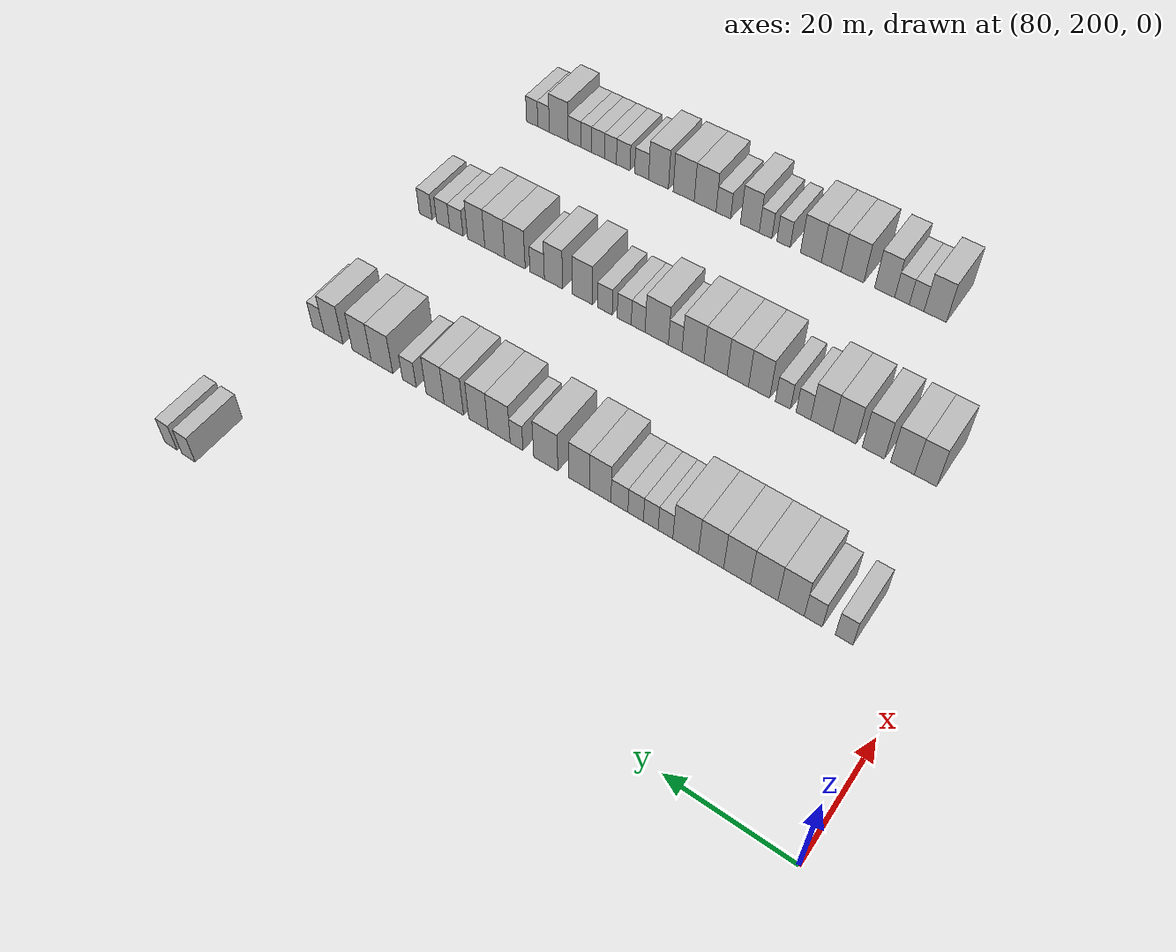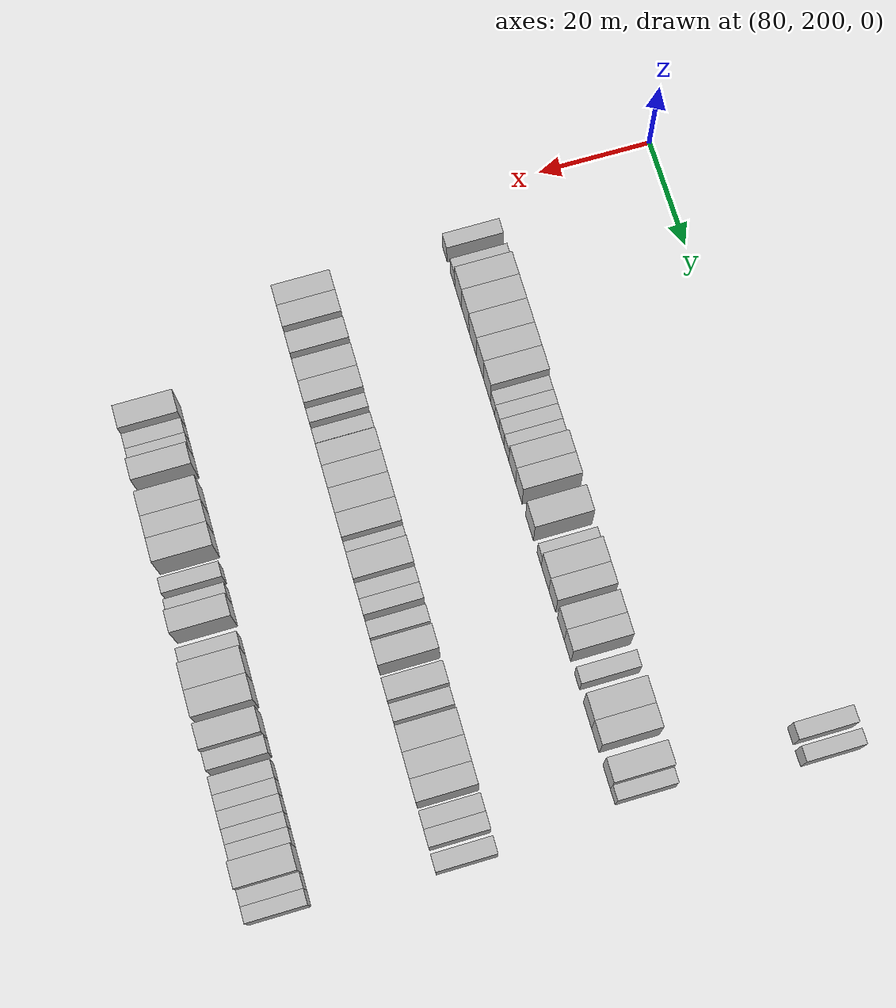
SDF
<sdf version="1.6">
 <world name="default">
  <model name="building_632">
   <static>1</static>
   <pose>85.0000 304.8907 0 0.000000 0.000000 0.000000</pose>
   <link name="link">
    <pose>0 0 3.00 0 0 0</pose>
    <collision name="collision"><geometry><box><size>10.0000 2.8328 6.0000</size></box></geometry></collision>
    <visual name="visual">
     <cast_shadows>0</cast_shadows>
     <geometry><box><size>10.0000 2.8328 6.0000</size></box></geometry>
     <material>
      <script>
       <uri>model://HANNAS_wall/materials/scripts</uri>
       <uri>model://HANNAS_wall/materials/textures</uri>
       <name>vrc/HANNAS_wall</name>
      </script>
     </material>
    </visual>
   </link>
  </model>
  <model name="building_633">
   <static>1</static>
   <pose>85.0000 308.6140 0 0.000000 0.000000 0.000000</pose>
   <link name="link">
    <pose>0 0 3.00 0 0 0</pose>
    <collision name="collision"><geometry><box><size>10.0000 2.6139 6.0000</size></box></geometry></collision>
    <visual name="visual">
     <cast_shadows>0</cast_shadows>
     <geometry><box><size>10.0000 2.6139 6.0000</size></box></geometry>
     <material>
      <script>
       <uri>model://HANNAS_wall/materials/scripts</uri>
       <uri>model://HANNAS_wall/materials/textures</uri>
       <name>vrc/HANNAS_wall</name>
      </script>
     </material>
    </visual>
   </link>
  </model>
  <model name="building_836">
   <static>1</static>
   <pose>115.0000 210.1553 0 0.000000 0.000000 0.000000</pose>
   <link name="link">
    <pose>0 0 3.00 0 0 0</pose>
    <collision name="collision"><geometry><box><size>10.0000 2.7211 6.0000</size></box></geometry></collision>
    <visual name="visual">
     <cast_shadows>0</cast_shadows>
     <geometry><box><size>10.0000 2.7211 6.0000</size></box></geometry>
     <material>
      <script>
       <uri>model://HANNAS_wall/materials/scripts</uri>
       <uri>model://HANNAS_wall/materials/textures</uri>
       <name>vrc/HANNAS_wall</name>
      </script>
     </material>
    </visual>
   </link>
  </model>
  <model name="building_837">
   <static>1</static>
   <pose>115.0000 214.9352 0 0.000000 0.000000 0.000000</pose>
   <link name="link">
    <pose>0 0 3.00 0 0 0</pose>
    <collision name="collision"><geometry><box><size>10.0000 2.8386 6.0000</size></box></geometry></collision>
    <visual name="visual">
     <cast_shadows>0</cast_shadows>
     <geometry><box><size>10.0000 2.8386 6.0000</size></box></geometry>
     <material>
      <script>
       <uri>model://HANNAS_wall/materials/scripts</uri>
       <uri>model://HANNAS_wall/materials/textures</uri>
       <name>vrc/HANNAS_wall</name>
      </script>
     </material>
    </visual>
   </link>
  </model>
  <model name="building_838">
   <static>1</static>
   <pose>115.0000 218.4453 0 0.000000 0.000000 0.000000</pose>
   <link name="link">
    <pose>0 0 4.50 0 0 0</pose>
    <collision name="collision"><geometry><box><size>10.0000 4.1818 9.0000</size></box></geometry></collision>
    <visual name="visual">
     <cast_shadows>0</cast_shadows>
     <geometry><box><size>10.0000 4.1818 9.0000</size></box></geometry>
     <material>
      <script>
       <uri>model://HANNAS_wall/materials/scripts</uri>
       <uri>model://HANNAS_wall/materials/textures</uri>
       <name>vrc/HANNAS_wall</name>
      </script>
     </material>
    </visual>
   </link>
  </model>
  <model name="building_839">
   <static>1</static>
   <pose>115.0000 222.7494 0 0.000000 0.000000 0.000000</pose>
   <link name="link">
    <pose>0 0 4.50 0 0 0</pose>
    <collision name="collision"><geometry><box><size>10.0000 4.4264 9.0000</size></box></geometry></collision>
    <visual name="visual">
     <cast_shadows>0</cast_shadows>
     <geometry><box><size>10.0000 4.4264 9.0000</size></box></geometry>
     <material>
      <script>
       <uri>model://HANNAS_wall/materials/scripts</uri>
       <uri>model://HANNAS_wall/materials/textures</uri>
       <name>vrc/HANNAS_wall</name>
      </script>
     </material>
    </visual>
   </link>
  </model>
  <model name="building_840">
   <static>1</static>
   <pose>115.0000 227.1633 0 0.000000 0.000000 0.000000</pose>
   <link name="link">
    <pose>0 0 4.50 0 0 0</pose>
    <collision name="collision"><geometry><box><size>10.0000 4.4013 9.0000</size></box></geometry></collision>
    <visual name="visual">
     <cast_shadows>0</cast_shadows>
     <geometry><box><size>10.0000 4.4013 9.0000</size></box></geometry>
     <material>
      <script>
       <uri>model://HANNAS_wall/materials/scripts</uri>
       <uri>model://HANNAS_wall/materials/textures</uri>
       <name>vrc/HANNAS_wall</name>
      </script>
     </material>
    </visual>
   </link>
  </model>
  <model name="building_841">
   <static>1</static>
   <pose>115.0000 231.4648 0 0.000000 0.000000 0.000000</pose>
   <link name="link">
    <pose>0 0 4.50 0 0 0</pose>
    <collision name="collision"><geometry><box><size>10.0000 4.2017 9.0000</size></box></geometry></collision>
    <visual name="visual">
     <cast_shadows>0</cast_shadows>
     <geometry><box><size>10.0000 4.2017 9.0000</size></box></geometry>
     <material>
      <script>
       <uri>model://HANNAS_wall/materials/scripts</uri>
       <uri>model://HANNAS_wall/materials/textures</uri>
       <name>vrc/HANNAS_wall</name>
      </script>
     </material>
    </visual>
   </link>
  </model>
  <model name="building_842">
   <static>1</static>
   <pose>115.0000 235.7319 0 0.000000 0.000000 0.000000</pose>
   <link name="link">
    <pose>0 0 4.50 0 0 0</pose>
    <collision name="collision"><geometry><box><size>10.0000 4.3326 9.0000</size></box></geometry></collision>
    <visual name="visual">
     <cast_shadows>0</cast_shadows>
     <geometry><box><size>10.0000 4.3326 9.0000</size></box></geometry>
     <material>
      <script>
       <uri>model://HANNAS_wall/materials/scripts</uri>
       <uri>model://HANNAS_wall/materials/textures</uri>
       <name>vrc/HANNAS_wall</name>
      </script>
     </material>
    </visual>
   </link>
  </model>
  <model name="building_843">
   <static>1</static>
   <pose>115.0000 239.1589 0 0.000000 0.000000 0.000000</pose>
   <link name="link">
    <pose>0 0 3.00 0 0 0</pose>
    <collision name="collision"><geometry><box><size>10.0000 2.5213 6.0000</size></box></geometry></collision>
    <visual name="visual">
     <cast_shadows>0</cast_shadows>
     <geometry><box><size>10.0000 2.5213 6.0000</size></box></geometry>
     <material>
      <script>
       <uri>model://HANNAS_wall/materials/scripts</uri>
       <uri>model://HANNAS_wall/materials/textures</uri>
       <name>vrc/HANNAS_wall</name>
      </script>
     </material>
    </visual>
   </link>
  </model>
  <model name="building_844">
   <static>1</static>
   <pose>115.0000 241.6951 0 0.000000 0.000000 0.000000</pose>
   <link name="link">
    <pose>0 0 3.00 0 0 0</pose>
    <collision name="collision"><geometry><box><size>10.0000 2.5510 6.0000</size></box></geometry></collision>
    <visual name="visual">
     <cast_shadows>0</cast_shadows>
     <geometry><box><size>10.0000 2.5510 6.0000</size></box></geometry>
     <material>
      <script>
       <uri>model://HANNAS_wall/materials/scripts</uri>
       <uri>model://HANNAS_wall/materials/textures</uri>
       <name>vrc/HANNAS_wall</name>
      </script>
     </material>
    </visual>
   </link>
  </model>
  <model name="building_845">
   <static>1</static>
   <pose>115.0000 244.3239 0 0.000000 0.000000 0.000000</pose>
   <link name="link">
    <pose>0 0 3.00 0 0 0</pose>
    <collision name="collision"><geometry><box><size>10.0000 2.7066 6.0000</size></box></geometry></collision>
    <visual name="visual">
     <cast_shadows>0</cast_shadows>
     <geometry><box><size>10.0000 2.7066 6.0000</size></box></geometry>
     <material>
      <script>
       <uri>model://HANNAS_wall/materials/scripts</uri>
       <uri>model://HANNAS_wall/materials/textures</uri>
       <name>vrc/HANNAS_wall</name>
      </script>
     </material>
    </visual>
   </link>
  </model>
  <model name="building_846">
   <static>1</static>
   <pose>115.0000 247.1698 0 0.000000 0.000000 0.000000</pose>
   <link name="link">
    <pose>0 0 3.00 0 0 0</pose>
    <collision name="collision"><geometry><box><size>10.0000 2.9851 6.0000</size></box></geometry></collision>
    <visual name="visual">
     <cast_shadows>0</cast_shadows>
     <geometry><box><size>10.0000 2.9851 6.0000</size></box></geometry>
     <material>
      <script>
       <uri>model://HANNAS_wall/materials/scripts</uri>
       <uri>model://HANNAS_wall/materials/textures</uri>
       <name>vrc/HANNAS_wall</name>
      </script>
     </material>
    </visual>
   </link>
  </model>
  <model name="building_847">
   <static>1</static>
   <pose>115.0000 250.5902 0 0.000000 0.000000 0.000000</pose>
   <link name="link">
    <pose>0 0 4.50 0 0 0</pose>
    <collision name="collision"><geometry><box><size>10.0000 3.8558 9.0000</size></box></geometry></collision>
    <visual name="visual">
     <cast_shadows>0</cast_shadows>
     <geometry><box><size>10.0000 3.8558 9.0000</size></box></geometry>
     <material>
      <script>
       <uri>model://HANNAS_wall/materials/scripts</uri>
       <uri>model://HANNAS_wall/materials/textures</uri>
       <name>vrc/HANNAS_wall</name>
      </script>
     </material>
    </visual>
   </link>
  </model>
  <model name="building_848">
   <static>1</static>
   <pose>115.0000 254.3820 0 0.000000 0.000000 0.000000</pose>
   <link name="link">
    <pose>0 0 4.50 0 0 0</pose>
    <collision name="collision"><geometry><box><size>10.0000 3.7278 9.0000</size></box></geometry></collision>
    <visual name="visual">
     <cast_shadows>0</cast_shadows>
     <geometry><box><size>10.0000 3.7278 9.0000</size></box></geometry>
     <material>
      <script>
       <uri>model://HANNAS_wall/materials/scripts</uri>
       <uri>model://HANNAS_wall/materials/textures</uri>
       <name>vrc/HANNAS_wall</name>
      </script>
     </material>
    </visual>
   </link>
  </model>
  <model name="building_849">
   <static>1</static>
   <pose>115.0000 260.4885 0 0.000000 0.000000 0.000000</pose>
   <link name="link">
    <pose>0 0 4.50 0 0 0</pose>
    <collision name="collision"><geometry><box><size>10.0000 4.4853 9.0000</size></box></geometry></collision>
    <visual name="visual">
     <cast_shadows>0</cast_shadows>
     <geometry><box><size>10.0000 4.4853 9.0000</size></box></geometry>
     <material>
      <script>
       <uri>model://HANNAS_wall/materials/scripts</uri>
       <uri>model://HANNAS_wall/materials/textures</uri>
       <name>vrc/HANNAS_wall</name>
      </script>
     </material>
    </visual>
   </link>
  </model>
  <model name="building_850">
   <static>1</static>
   <pose>115.0000 265.9435 0 0.000000 0.000000 0.000000</pose>
   <link name="link">
    <pose>0 0 3.00 0 0 0</pose>
    <collision name="collision"><geometry><box><size>10.0000 2.4246 6.0000</size></box></geometry></collision>
    <visual name="visual">
     <cast_shadows>0</cast_shadows>
     <geometry><box><size>10.0000 2.4246 6.0000</size></box></geometry>
     <material>
      <script>
       <uri>model://HANNAS_wall/materials/scripts</uri>
       <uri>model://HANNAS_wall/materials/textures</uri>
       <name>vrc/HANNAS_wall</name>
      </script>
     </material>
    </visual>
   </link>
  </model>
  <model name="building_851">
   <static>1</static>
   <pose>115.0000 269.2819 0 0.000000 0.000000 0.000000</pose>
   <link name="link">
    <pose>0 0 4.50 0 0 0</pose>
    <collision name="collision"><geometry><box><size>10.0000 4.2522 9.0000</size></box></geometry></collision>
    <visual name="visual">
     <cast_shadows>0</cast_shadows>
     <geometry><box><size>10.0000 4.2522 9.0000</size></box></geometry>
     <material>
      <script>
       <uri>model://HANNAS_wall/materials/scripts</uri>
       <uri>model://HANNAS_wall/materials/textures</uri>
       <name>vrc/HANNAS_wall</name>
      </script>
     </material>
    </visual>
   </link>
  </model>
  <model name="building_852">
   <static>1</static>
   <pose>115.0000 273.2764 0 0.000000 0.000000 0.000000</pose>
   <link name="link">
    <pose>0 0 4.50 0 0 0</pose>
    <collision name="collision"><geometry><box><size>10.0000 3.7368 9.0000</size></box></geometry></collision>
    <visual name="visual">
     <cast_shadows>0</cast_shadows>
     <geometry><box><size>10.0000 3.7368 9.0000</size></box></geometry>
     <material>
      <script>
       <uri>model://HANNAS_wall/materials/scripts</uri>
       <uri>model://HANNAS_wall/materials/textures</uri>
       <name>vrc/HANNAS_wall</name>
      </script>
     </material>
    </visual>
   </link>
  </model>
  <model name="building_853">
   <static>1</static>
   <pose>115.0000 278.0566 0 0.000000 0.000000 0.000000</pose>
   <link name="link">
    <pose>0 0 4.50 0 0 0</pose>
    <collision name="collision"><geometry><box><size>10.0000 3.8236 9.0000</size></box></geometry></collision>
    <visual name="visual">
     <cast_shadows>0</cast_shadows>
     <geometry><box><size>10.0000 3.8236 9.0000</size></box></geometry>
     <material>
      <script>
       <uri>model://HANNAS_wall/materials/scripts</uri>
       <uri>model://HANNAS_wall/materials/textures</uri>
       <name>vrc/HANNAS_wall</name>
      </script>
     </material>
    </visual>
   </link>
  </model>
  <model name="building_854">
   <static>1</static>
   <pose>115.0000 281.7792 0 0.000000 0.000000 0.000000</pose>
   <link name="link">
    <pose>0 0 4.50 0 0 0</pose>
    <collision name="collision"><geometry><box><size>10.0000 3.6218 9.0000</size></box></geometry></collision>
    <visual name="visual">
     <cast_shadows>0</cast_shadows>
     <geometry><box><size>10.0000 3.6218 9.0000</size></box></geometry>
     <material>
      <script>
       <uri>model://HANNAS_wall/materials/scripts</uri>
       <uri>model://HANNAS_wall/materials/textures</uri>
       <name>vrc/HANNAS_wall</name>
      </script>
     </material>
    </visual>
   </link>
  </model>
  <model name="building_855">
   <static>1</static>
   <pose>115.0000 286.9807 0 0.000000 0.000000 0.000000</pose>
   <link name="link">
    <pose>0 0 3.00 0 0 0</pose>
    <collision name="collision"><geometry><box><size>10.0000 2.7812 6.0000</size></box></geometry></collision>
    <visual name="visual">
     <cast_shadows>0</cast_shadows>
     <geometry><box><size>10.0000 2.7812 6.0000</size></box></geometry>
     <material>
      <script>
       <uri>model://HANNAS_wall/materials/scripts</uri>
       <uri>model://HANNAS_wall/materials/textures</uri>
       <name>vrc/HANNAS_wall</name>
      </script>
     </material>
    </visual>
   </link>
  </model>
  <model name="building_856">
   <static>1</static>
   <pose>115.0000 292.6043 0 0.000000 0.000000 0.000000</pose>
   <link name="link">
    <pose>0 0 4.50 0 0 0</pose>
    <collision name="collision"><geometry><box><size>10.0000 4.4660 9.0000</size></box></geometry></collision>
    <visual name="visual">
     <cast_shadows>0</cast_shadows>
     <geometry><box><size>10.0000 4.4660 9.0000</size></box></geometry>
     <material>
      <script>
       <uri>model://HANNAS_wall/materials/scripts</uri>
       <uri>model://HANNAS_wall/materials/textures</uri>
       <name>vrc/HANNAS_wall</name>
      </script>
     </material>
    </visual>
   </link>
  </model>
  <model name="building_857">
   <static>1</static>
   <pose>115.0000 296.8249 0 0.000000 0.000000 0.000000</pose>
   <link name="link">
    <pose>0 0 4.50 0 0 0</pose>
    <collision name="collision"><geometry><box><size>10.0000 3.9752 9.0000</size></box></geometry></collision>
    <visual name="visual">
     <cast_shadows>0</cast_shadows>
     <geometry><box><size>10.0000 3.9752 9.0000</size></box></geometry>
     <material>
      <script>
       <uri>model://HANNAS_wall/materials/scripts</uri>
       <uri>model://HANNAS_wall/materials/textures</uri>
       <name>vrc/HANNAS_wall</name>
      </script>
     </material>
    </visual>
   </link>
  </model>
  <model name="building_858">
   <static>1</static>
   <pose>115.0000 302.8212 0 0.000000 0.000000 0.000000</pose>
   <link name="link">
    <pose>0 0 4.50 0 0 0</pose>
    <collision name="collision"><geometry><box><size>10.0000 4.0174 9.0000</size></box></geometry></collision>
    <visual name="visual">
     <cast_shadows>0</cast_shadows>
     <geometry><box><size>10.0000 4.0174 9.0000</size></box></geometry>
     <material>
      <script>
       <uri>model://HANNAS_wall/materials/scripts</uri>
       <uri>model://HANNAS_wall/materials/textures</uri>
       <name>vrc/HANNAS_wall</name>
      </script>
     </material>
    </visual>
   </link>
  </model>
  <model name="building_859">
   <static>1</static>
   <pose>115.0000 306.1054 0 0.000000 0.000000 0.000000</pose>
   <link name="link">
    <pose>0 0 3.00 0 0 0</pose>
    <collision name="collision"><geometry><box><size>10.0000 2.5510 6.0000</size></box></geometry></collision>
    <visual name="visual">
     <cast_shadows>0</cast_shadows>
     <geometry><box><size>10.0000 2.5510 6.0000</size></box></geometry>
     <material>
      <script>
       <uri>model://HANNAS_wall/materials/scripts</uri>
       <uri>model://HANNAS_wall/materials/textures</uri>
       <name>vrc/HANNAS_wall</name>
      </script>
     </material>
    </visual>
   </link>
  </model>
  <model name="building_1061">
   <static>1</static>
   <pose>145.0000 212.7986 0 0.000000 0.000000 0.000000</pose>
   <link name="link">
    <pose>0 0 4.50 0 0 0</pose>
    <collision name="collision"><geometry><box><size>10.0000 3.6614 9.0000</size></box></geometry></collision>
    <visual name="visual">
     <cast_shadows>0</cast_shadows>
     <geometry><box><size>10.0000 3.6614 9.0000</size></box></geometry>
     <material>
      <script>
       <uri>model://HANNAS_wall/materials/scripts</uri>
       <uri>model://HANNAS_wall/materials/textures</uri>
       <name>vrc/HANNAS_wall</name>
      </script>
     </material>
    </visual>
   </link>
  </model>
  <model name="building_1062">
   <static>1</static>
   <pose>145.0000 216.6008 0 0.000000 0.000000 0.000000</pose>
   <link name="link">
    <pose>0 0 4.50 0 0 0</pose>
    <collision name="collision"><geometry><box><size>10.0000 3.9428 9.0000</size></box></geometry></collision>
    <visual name="visual">
     <cast_shadows>0</cast_shadows>
     <geometry><box><size>10.0000 3.9428 9.0000</size></box></geometry>
     <material>
      <script>
       <uri>model://HANNAS_wall/materials/scripts</uri>
       <uri>model://HANNAS_wall/materials/textures</uri>
       <name>vrc/HANNAS_wall</name>
      </script>
     </material>
    </visual>
   </link>
  </model>
  <model name="building_1063">
   <static>1</static>
   <pose>145.0000 221.4599 0 0.000000 0.000000 0.000000</pose>
   <link name="link">
    <pose>0 0 4.50 0 0 0</pose>
    <collision name="collision"><geometry><box><size>10.0000 3.7754 9.0000</size></box></geometry></collision>
    <visual name="visual">
     <cast_shadows>0</cast_shadows>
     <geometry><box><size>10.0000 3.7754 9.0000</size></box></geometry>
     <material>
      <script>
       <uri>model://HANNAS_wall/materials/scripts</uri>
       <uri>model://HANNAS_wall/materials/textures</uri>
       <name>vrc/HANNAS_wall</name>
      </script>
     </material>
    </visual>
   </link>
  </model>
  <model name="building_1064">
   <static>1</static>
   <pose>145.0000 226.3456 0 0.000000 0.000000 0.000000</pose>
   <link name="link">
    <pose>0 0 4.50 0 0 0</pose>
    <collision name="collision"><geometry><box><size>10.0000 3.9961 9.0000</size></box></geometry></collision>
    <visual name="visual">
     <cast_shadows>0</cast_shadows>
     <geometry><box><size>10.0000 3.9961 9.0000</size></box></geometry>
     <material>
      <script>
       <uri>model://HANNAS_wall/materials/scripts</uri>
       <uri>model://HANNAS_wall/materials/textures</uri>
       <name>vrc/HANNAS_wall</name>
      </script>
     </material>
    </visual>
   </link>
  </model>
  <model name="building_1065">
   <static>1</static>
   <pose>145.0000 230.2855 0 0.000000 0.000000 0.000000</pose>
   <link name="link">
    <pose>0 0 4.50 0 0 0</pose>
    <collision name="collision"><geometry><box><size>10.0000 3.8837 9.0000</size></box></geometry></collision>
    <visual name="visual">
     <cast_shadows>0</cast_shadows>
     <geometry><box><size>10.0000 3.8837 9.0000</size></box></geometry>
     <material>
      <script>
       <uri>model://HANNAS_wall/materials/scripts</uri>
       <uri>model://HANNAS_wall/materials/textures</uri>
       <name>vrc/HANNAS_wall</name>
      </script>
     </material>
    </visual>
   </link>
  </model>
  <model name="building_1066">
   <static>1</static>
   <pose>145.0000 233.4988 0 0.000000 0.000000 0.000000</pose>
   <link name="link">
    <pose>0 0 3.00 0 0 0</pose>
    <collision name="collision"><geometry><box><size>10.0000 2.5429 6.0000</size></box></geometry></collision>
    <visual name="visual">
     <cast_shadows>0</cast_shadows>
     <geometry><box><size>10.0000 2.5429 6.0000</size></box></geometry>
     <material>
      <script>
       <uri>model://HANNAS_wall/materials/scripts</uri>
       <uri>model://HANNAS_wall/materials/textures</uri>
       <name>vrc/HANNAS_wall</name>
      </script>
     </material>
    </visual>
   </link>
  </model>
  <model name="building_1067">
   <static>1</static>
   <pose>145.0000 237.1090 0 0.000000 0.000000 0.000000</pose>
   <link name="link">
    <pose>0 0 3.00 0 0 0</pose>
    <collision name="collision"><geometry><box><size>10.0000 2.6773 6.0000</size></box></geometry></collision>
    <visual name="visual">
     <cast_shadows>0</cast_shadows>
     <geometry><box><size>10.0000 2.6773 6.0000</size></box></geometry>
     <material>
      <script>
       <uri>model://HANNAS_wall/materials/scripts</uri>
       <uri>model://HANNAS_wall/materials/textures</uri>
       <name>vrc/HANNAS_wall</name>
      </script>
     </material>
    </visual>
   </link>
  </model>
  <model name="building_1068">
   <static>1</static>
   <pose>145.0000 241.3658 0 0.000000 0.000000 0.000000</pose>
   <link name="link">
    <pose>0 0 4.50 0 0 0</pose>
    <collision name="collision"><geometry><box><size>10.0000 3.8363 9.0000</size></box></geometry></collision>
    <visual name="visual">
     <cast_shadows>0</cast_shadows>
     <geometry><box><size>10.0000 3.8363 9.0000</size></box></geometry>
     <material>
      <script>
       <uri>model://HANNAS_wall/materials/scripts</uri>
       <uri>model://HANNAS_wall/materials/textures</uri>
       <name>vrc/HANNAS_wall</name>
      </script>
     </material>
    </visual>
   </link>
  </model>
  <model name="building_1069">
   <static>1</static>
   <pose>145.0000 245.2381 0 0.000000 0.000000 0.000000</pose>
   <link name="link">
    <pose>0 0 4.50 0 0 0</pose>
    <collision name="collision"><geometry><box><size>10.0000 3.9084 9.0000</size></box></geometry></collision>
    <visual name="visual">
     <cast_shadows>0</cast_shadows>
     <geometry><box><size>10.0000 3.9084 9.0000</size></box></geometry>
     <material>
      <script>
       <uri>model://HANNAS_wall/materials/scripts</uri>
       <uri>model://HANNAS_wall/materials/textures</uri>
       <name>vrc/HANNAS_wall</name>
      </script>
     </material>
    </visual>
   </link>
  </model>
  <model name="building_1070">
   <static>1</static>
   <pose>145.0000 249.3466 0 0.000000 0.000000 0.000000</pose>
   <link name="link">
    <pose>0 0 4.50 0 0 0</pose>
    <collision name="collision"><geometry><box><size>10.0000 4.3087 9.0000</size></box></geometry></collision>
    <visual name="visual">
     <cast_shadows>0</cast_shadows>
     <geometry><box><size>10.0000 4.3087 9.0000</size></box></geometry>
     <material>
      <script>
       <uri>model://HANNAS_wall/materials/scripts</uri>
       <uri>model://HANNAS_wall/materials/textures</uri>
       <name>vrc/HANNAS_wall</name>
      </script>
     </material>
    </visual>
   </link>
  </model>
  <model name="building_1071">
   <static>1</static>
   <pose>145.0000 253.5643 0 0.000000 0.000000 0.000000</pose>
   <link name="link">
    <pose>0 0 4.50 0 0 0</pose>
    <collision name="collision"><geometry><box><size>10.0000 4.1267 9.0000</size></box></geometry></collision>
    <visual name="visual">
     <cast_shadows>0</cast_shadows>
     <geometry><box><size>10.0000 4.1267 9.0000</size></box></geometry>
     <material>
      <script>
       <uri>model://HANNAS_wall/materials/scripts</uri>
       <uri>model://HANNAS_wall/materials/textures</uri>
       <name>vrc/HANNAS_wall</name>
      </script>
     </material>
    </visual>
   </link>
  </model>
  <model name="building_1072">
   <static>1</static>
   <pose>145.0000 256.9150 0 0.000000 0.000000 0.000000</pose>
   <link name="link">
    <pose>0 0 3.00 0 0 0</pose>
    <collision name="collision"><geometry><box><size>10.0000 2.5748 6.0000</size></box></geometry></collision>
    <visual name="visual">
     <cast_shadows>0</cast_shadows>
     <geometry><box><size>10.0000 2.5748 6.0000</size></box></geometry>
     <material>
      <script>
       <uri>model://HANNAS_wall/materials/scripts</uri>
       <uri>model://HANNAS_wall/materials/textures</uri>
       <name>vrc/HANNAS_wall</name>
      </script>
     </material>
    </visual>
   </link>
  </model>
  <model name="building_1073">
   <static>1</static>
   <pose>145.0000 260.4505 0 0.000000 0.000000 0.000000</pose>
   <link name="link">
    <pose>0 0 4.50 0 0 0</pose>
    <collision name="collision"><geometry><box><size>10.0000 4.4962 9.0000</size></box></geometry></collision>
    <visual name="visual">
     <cast_shadows>0</cast_shadows>
     <geometry><box><size>10.0000 4.4962 9.0000</size></box></geometry>
     <material>
      <script>
       <uri>model://HANNAS_wall/materials/scripts</uri>
       <uri>model://HANNAS_wall/materials/textures</uri>
       <name>vrc/HANNAS_wall</name>
      </script>
     </material>
    </visual>
   </link>
  </model>
  <model name="building_1074">
   <static>1</static>
   <pose>145.0000 264.0435 0 0.000000 0.000000 0.000000</pose>
   <link name="link">
    <pose>0 0 3.00 0 0 0</pose>
    <collision name="collision"><geometry><box><size>10.0000 2.6898 6.0000</size></box></geometry></collision>
    <visual name="visual">
     <cast_shadows>0</cast_shadows>
     <geometry><box><size>10.0000 2.6898 6.0000</size></box></geometry>
     <material>
      <script>
       <uri>model://HANNAS_wall/materials/scripts</uri>
       <uri>model://HANNAS_wall/materials/textures</uri>
       <name>vrc/HANNAS_wall</name>
      </script>
     </material>
    </visual>
   </link>
  </model>
  <model name="building_1075">
   <static>1</static>
   <pose>145.0000 266.7605 0 0.000000 0.000000 0.000000</pose>
   <link name="link">
    <pose>0 0 3.00 0 0 0</pose>
    <collision name="collision"><geometry><box><size>10.0000 2.7441 6.0000</size></box></geometry></collision>
    <visual name="visual">
     <cast_shadows>0</cast_shadows>
     <geometry><box><size>10.0000 2.7441 6.0000</size></box></geometry>
     <material>
      <script>
       <uri>model://HANNAS_wall/materials/scripts</uri>
       <uri>model://HANNAS_wall/materials/textures</uri>
       <name>vrc/HANNAS_wall</name>
      </script>
     </material>
    </visual>
   </link>
  </model>
  <model name="building_1076">
   <static>1</static>
   <pose>145.0000 270.5870 0 0.000000 0.000000 0.000000</pose>
   <link name="link">
    <pose>0 0 3.00 0 0 0</pose>
    <collision name="collision"><geometry><box><size>10.0000 2.9090 6.0000</size></box></geometry></collision>
    <visual name="visual">
     <cast_shadows>0</cast_shadows>
     <geometry><box><size>10.0000 2.9090 6.0000</size></box></geometry>
     <material>
      <script>
       <uri>model://HANNAS_wall/materials/scripts</uri>
       <uri>model://HANNAS_wall/materials/textures</uri>
       <name>vrc/HANNAS_wall</name>
      </script>
     </material>
    </visual>
   </link>
  </model>
  <model name="building_1077">
   <static>1</static>
   <pose>145.0000 275.0755 0 0.000000 0.000000 0.000000</pose>
   <link name="link">
    <pose>0 0 4.50 0 0 0</pose>
    <collision name="collision"><geometry><box><size>10.0000 4.0680 9.0000</size></box></geometry></collision>
    <visual name="visual">
     <cast_shadows>0</cast_shadows>
     <geometry><box><size>10.0000 4.0680 9.0000</size></box></geometry>
     <material>
      <script>
       <uri>model://HANNAS_wall/materials/scripts</uri>
       <uri>model://HANNAS_wall/materials/textures</uri>
       <name>vrc/HANNAS_wall</name>
      </script>
     </material>
    </visual>
   </link>
  </model>
  <model name="building_1078">
   <static>1</static>
   <pose>145.0000 280.9838 0 0.000000 0.000000 0.000000</pose>
   <link name="link">
    <pose>0 0 4.50 0 0 0</pose>
    <collision name="collision"><geometry><box><size>10.0000 3.7486 9.0000</size></box></geometry></collision>
    <visual name="visual">
     <cast_shadows>0</cast_shadows>
     <geometry><box><size>10.0000 3.7486 9.0000</size></box></geometry>
     <material>
      <script>
       <uri>model://HANNAS_wall/materials/scripts</uri>
       <uri>model://HANNAS_wall/materials/textures</uri>
       <name>vrc/HANNAS_wall</name>
      </script>
     </material>
    </visual>
   </link>
  </model>
  <model name="building_1079">
   <static>1</static>
   <pose>145.0000 284.3535 0 0.000000 0.000000 0.000000</pose>
   <link name="link">
    <pose>0 0 3.00 0 0 0</pose>
    <collision name="collision"><geometry><box><size>10.0000 2.9907 6.0000</size></box></geometry></collision>
    <visual name="visual">
     <cast_shadows>0</cast_shadows>
     <geometry><box><size>10.0000 2.9907 6.0000</size></box></geometry>
     <material>
      <script>
       <uri>model://HANNAS_wall/materials/scripts</uri>
       <uri>model://HANNAS_wall/materials/textures</uri>
       <name>vrc/HANNAS_wall</name>
      </script>
     </material>
    </visual>
   </link>
  </model>
  <model name="building_1080">
   <static>1</static>
   <pose>145.0000 289.0135 0 0.000000 0.000000 0.000000</pose>
   <link name="link">
    <pose>0 0 4.50 0 0 0</pose>
    <collision name="collision"><geometry><box><size>10.0000 4.3294 9.0000</size></box></geometry></collision>
    <visual name="visual">
     <cast_shadows>0</cast_shadows>
     <geometry><box><size>10.0000 4.3294 9.0000</size></box></geometry>
     <material>
      <script>
       <uri>model://HANNAS_wall/materials/scripts</uri>
       <uri>model://HANNAS_wall/materials/textures</uri>
       <name>vrc/HANNAS_wall</name>
      </script>
     </material>
    </visual>
   </link>
  </model>
  <model name="building_1081">
   <static>1</static>
   <pose>145.0000 293.3037 0 0.000000 0.000000 0.000000</pose>
   <link name="link">
    <pose>0 0 4.50 0 0 0</pose>
    <collision name="collision"><geometry><box><size>10.0000 4.2508 9.0000</size></box></geometry></collision>
    <visual name="visual">
     <cast_shadows>0</cast_shadows>
     <geometry><box><size>10.0000 4.2508 9.0000</size></box></geometry>
     <material>
      <script>
       <uri>model://HANNAS_wall/materials/scripts</uri>
       <uri>model://HANNAS_wall/materials/textures</uri>
       <name>vrc/HANNAS_wall</name>
      </script>
     </material>
    </visual>
   </link>
  </model>
  <model name="building_1082">
   <static>1</static>
   <pose>145.0000 297.2907 0 0.000000 0.000000 0.000000</pose>
   <link name="link">
    <pose>0 0 4.50 0 0 0</pose>
    <collision name="collision"><geometry><box><size>10.0000 3.7232 9.0000</size></box></geometry></collision>
    <visual name="visual">
     <cast_shadows>0</cast_shadows>
     <geometry><box><size>10.0000 3.7232 9.0000</size></box></geometry>
     <material>
      <script>
       <uri>model://HANNAS_wall/materials/scripts</uri>
       <uri>model://HANNAS_wall/materials/textures</uri>
       <name>vrc/HANNAS_wall</name>
      </script>
     </material>
    </visual>
   </link>
  </model>
  <model name="building_1083">
   <static>1</static>
   <pose>145.0000 301.6253 0 0.000000 0.000000 0.000000</pose>
   <link name="link">
    <pose>0 0 3.00 0 0 0</pose>
    <collision name="collision"><geometry><box><size>10.0000 2.9460 6.0000</size></box></geometry></collision>
    <visual name="visual">
     <cast_shadows>0</cast_shadows>
     <geometry><box><size>10.0000 2.9460 6.0000</size></box></geometry>
     <material>
      <script>
       <uri>model://HANNAS_wall/materials/scripts</uri>
       <uri>model://HANNAS_wall/materials/textures</uri>
       <name>vrc/HANNAS_wall</name>
      </script>
     </material>
    </visual>
   </link>
  </model>
  <model name="building_1084">
   <static>1</static>
   <pose>145.0000 304.5373 0 0.000000 0.000000 0.000000</pose>
   <link name="link">
    <pose>0 0 3.00 0 0 0</pose>
    <collision name="collision"><geometry><box><size>10.0000 2.8781 6.0000</size></box></geometry></collision>
    <visual name="visual">
     <cast_shadows>0</cast_shadows>
     <geometry><box><size>10.0000 2.8781 6.0000</size></box></geometry>
     <material>
      <script>
       <uri>model://HANNAS_wall/materials/scripts</uri>
       <uri>model://HANNAS_wall/materials/textures</uri>
       <name>vrc/HANNAS_wall</name>
      </script>
     </material>
    </visual>
   </link>
  </model>
  <model name="building_1085">
   <static>1</static>
   <pose>145.0000 308.4206 0 0.000000 0.000000 0.000000</pose>
   <link name="link">
    <pose>0 0 3.00 0 0 0</pose>
    <collision name="collision"><geometry><box><size>10.0000 2.8885 6.0000</size></box></geometry></collision>
    <visual name="visual">
     <cast_shadows>0</cast_shadows>
     <geometry><box><size>10.0000 2.8885 6.0000</size></box></geometry>
     <material>
      <script>
       <uri>model://HANNAS_wall/materials/scripts</uri>
       <uri>model://HANNAS_wall/materials/textures</uri>
       <name>vrc/HANNAS_wall</name>
      </script>
     </material>
    </visual>
   </link>
  </model>
  <model name="building_1280">
   <static>1</static>
   <pose>175.0000 225.9377 0 0.000000 0.000000 0.000000</pose>
   <link name="link">
    <pose>0 0 4.50 0 0 0</pose>
    <collision name="collision"><geometry><box><size>10.0000 4.0241 9.0000</size></box></geometry></collision>
    <visual name="visual">
     <cast_shadows>0</cast_shadows>
     <geometry><box><size>10.0000 4.0241 9.0000</size></box></geometry>
     <material>
      <script>
       <uri>model://HANNAS_wall/materials/scripts</uri>
       <uri>model://HANNAS_wall/materials/textures</uri>
       <name>vrc/HANNAS_wall</name>
      </script>
     </material>
    </visual>
   </link>
  </model>
  <model name="building_1281">
   <static>1</static>
   <pose>175.0000 229.2720 0 0.000000 0.000000 0.000000</pose>
   <link name="link">
    <pose>0 0 3.00 0 0 0</pose>
    <collision name="collision"><geometry><box><size>10.0000 2.6446 6.0000</size></box></geometry></collision>
    <visual name="visual">
     <cast_shadows>0</cast_shadows>
     <geometry><box><size>10.0000 2.6446 6.0000</size></box></geometry>
     <material>
      <script>
       <uri>model://HANNAS_wall/materials/scripts</uri>
       <uri>model://HANNAS_wall/materials/textures</uri>
       <name>vrc/HANNAS_wall</name>
      </script>
     </material>
    </visual>
   </link>
  </model>
  <model name="building_1282">
   <static>1</static>
   <pose>175.0000 231.9304 0 0.000000 0.000000 0.000000</pose>
   <link name="link">
    <pose>0 0 3.00 0 0 0</pose>
    <collision name="collision"><geometry><box><size>10.0000 2.6723 6.0000</size></box></geometry></collision>
    <visual name="visual">
     <cast_shadows>0</cast_shadows>
     <geometry><box><size>10.0000 2.6723 6.0000</size></box></geometry>
     <material>
      <script>
       <uri>model://HANNAS_wall/materials/scripts</uri>
       <uri>model://HANNAS_wall/materials/textures</uri>
       <name>vrc/HANNAS_wall</name>
      </script>
     </material>
    </visual>
   </link>
  </model>
  <model name="building_1283">
   <static>1</static>
   <pose>175.0000 235.1299 0 0.000000 0.000000 0.000000</pose>
   <link name="link">
    <pose>0 0 4.50 0 0 0</pose>
    <collision name="collision"><geometry><box><size>10.0000 3.7265 9.0000</size></box></geometry></collision>
    <visual name="visual">
     <cast_shadows>0</cast_shadows>
     <geometry><box><size>10.0000 3.7265 9.0000</size></box></geometry>
     <material>
      <script>
       <uri>model://HANNAS_wall/materials/scripts</uri>
       <uri>model://HANNAS_wall/materials/textures</uri>
       <name>vrc/HANNAS_wall</name>
      </script>
     </material>
    </visual>
   </link>
  </model>
  <model name="building_1284">
   <static>1</static>
   <pose>175.0000 241.1167 0 0.000000 0.000000 0.000000</pose>
   <link name="link">
    <pose>0 0 4.50 0 0 0</pose>
    <collision name="collision"><geometry><box><size>10.0000 4.2472 9.0000</size></box></geometry></collision>
    <visual name="visual">
     <cast_shadows>0</cast_shadows>
     <geometry><box><size>10.0000 4.2472 9.0000</size></box></geometry>
     <material>
      <script>
       <uri>model://HANNAS_wall/materials/scripts</uri>
       <uri>model://HANNAS_wall/materials/textures</uri>
       <name>vrc/HANNAS_wall</name>
      </script>
     </material>
    </visual>
   </link>
  </model>
  <model name="building_1285">
   <static>1</static>
   <pose>175.0000 245.1260 0 0.000000 0.000000 0.000000</pose>
   <link name="link">
    <pose>0 0 4.50 0 0 0</pose>
    <collision name="collision"><geometry><box><size>10.0000 3.7715 9.0000</size></box></geometry></collision>
    <visual name="visual">
     <cast_shadows>0</cast_shadows>
     <geometry><box><size>10.0000 3.7715 9.0000</size></box></geometry>
     <material>
      <script>
       <uri>model://HANNAS_wall/materials/scripts</uri>
       <uri>model://HANNAS_wall/materials/textures</uri>
       <name>vrc/HANNAS_wall</name>
      </script>
     </material>
    </visual>
   </link>
  </model>
  <model name="building_1286">
   <static>1</static>
   <pose>175.0000 249.0320 0 0.000000 0.000000 0.000000</pose>
   <link name="link">
    <pose>0 0 4.50 0 0 0</pose>
    <collision name="collision"><geometry><box><size>10.0000 4.0404 9.0000</size></box></geometry></collision>
    <visual name="visual">
     <cast_shadows>0</cast_shadows>
     <geometry><box><size>10.0000 4.0404 9.0000</size></box></geometry>
     <material>
      <script>
       <uri>model://HANNAS_wall/materials/scripts</uri>
       <uri>model://HANNAS_wall/materials/textures</uri>
       <name>vrc/HANNAS_wall</name>
      </script>
     </material>
    </visual>
   </link>
  </model>
  <model name="building_1287">
   <static>1</static>
   <pose>175.0000 254.3601 0 0.000000 0.000000 0.000000</pose>
   <link name="link">
    <pose>0 0 3.00 0 0 0</pose>
    <collision name="collision"><geometry><box><size>10.0000 2.6160 6.0000</size></box></geometry></collision>
    <visual name="visual">
     <cast_shadows>0</cast_shadows>
     <geometry><box><size>10.0000 2.6160 6.0000</size></box></geometry>
     <material>
      <script>
       <uri>model://HANNAS_wall/materials/scripts</uri>
       <uri>model://HANNAS_wall/materials/textures</uri>
       <name>vrc/HANNAS_wall</name>
      </script>
     </material>
    </visual>
   </link>
  </model>
  <model name="building_1288">
   <static>1</static>
   <pose>175.0000 257.9141 0 0.000000 0.000000 0.000000</pose>
   <link name="link">
    <pose>0 0 3.00 0 0 0</pose>
    <collision name="collision"><geometry><box><size>10.0000 2.4918 6.0000</size></box></geometry></collision>
    <visual name="visual">
     <cast_shadows>0</cast_shadows>
     <geometry><box><size>10.0000 2.4918 6.0000</size></box></geometry>
     <material>
      <script>
       <uri>model://HANNAS_wall/materials/scripts</uri>
       <uri>model://HANNAS_wall/materials/textures</uri>
       <name>vrc/HANNAS_wall</name>
      </script>
     </material>
    </visual>
   </link>
  </model>
  <model name="building_1289">
   <static>1</static>
   <pose>175.0000 261.0420 0 0.000000 0.000000 0.000000</pose>
   <link name="link">
    <pose>0 0 4.50 0 0 0</pose>
    <collision name="collision"><geometry><box><size>10.0000 3.7641 9.0000</size></box></geometry></collision>
    <visual name="visual">
     <cast_shadows>0</cast_shadows>
     <geometry><box><size>10.0000 3.7641 9.0000</size></box></geometry>
     <material>
      <script>
       <uri>model://HANNAS_wall/materials/scripts</uri>
       <uri>model://HANNAS_wall/materials/textures</uri>
       <name>vrc/HANNAS_wall</name>
      </script>
     </material>
    </visual>
   </link>
  </model>
  <model name="building_1290">
   <static>1</static>
   <pose>175.0000 266.4019 0 0.000000 0.000000 0.000000</pose>
   <link name="link">
    <pose>0 0 3.00 0 0 0</pose>
    <collision name="collision"><geometry><box><size>10.0000 2.9556 6.0000</size></box></geometry></collision>
    <visual name="visual">
     <cast_shadows>0</cast_shadows>
     <geometry><box><size>10.0000 2.9556 6.0000</size></box></geometry>
     <material>
      <script>
       <uri>model://HANNAS_wall/materials/scripts</uri>
       <uri>model://HANNAS_wall/materials/textures</uri>
       <name>vrc/HANNAS_wall</name>
      </script>
     </material>
    </visual>
   </link>
  </model>
  <model name="building_1291">
   <static>1</static>
   <pose>175.0000 270.1288 0 0.000000 0.000000 0.000000</pose>
   <link name="link">
    <pose>0 0 4.50 0 0 0</pose>
    <collision name="collision"><geometry><box><size>10.0000 4.4981 9.0000</size></box></geometry></collision>
    <visual name="visual">
     <cast_shadows>0</cast_shadows>
     <geometry><box><size>10.0000 4.4981 9.0000</size></box></geometry>
     <material>
      <script>
       <uri>model://HANNAS_wall/materials/scripts</uri>
       <uri>model://HANNAS_wall/materials/textures</uri>
       <name>vrc/HANNAS_wall</name>
      </script>
     </material>
    </visual>
   </link>
  </model>
  <model name="building_1292">
   <static>1</static>
   <pose>175.0000 274.5707 0 0.000000 0.000000 0.000000</pose>
   <link name="link">
    <pose>0 0 4.50 0 0 0</pose>
    <collision name="collision"><geometry><box><size>10.0000 4.3857 9.0000</size></box></geometry></collision>
    <visual name="visual">
     <cast_shadows>0</cast_shadows>
     <geometry><box><size>10.0000 4.3857 9.0000</size></box></geometry>
     <material>
      <script>
       <uri>model://HANNAS_wall/materials/scripts</uri>
       <uri>model://HANNAS_wall/materials/textures</uri>
       <name>vrc/HANNAS_wall</name>
      </script>
     </material>
    </visual>
   </link>
  </model>
  <model name="building_1293">
   <static>1</static>
   <pose>175.0000 279.8609 0 0.000000 0.000000 0.000000</pose>
   <link name="link">
    <pose>0 0 4.50 0 0 0</pose>
    <collision name="collision"><geometry><box><size>10.0000 4.1946 9.0000</size></box></geometry></collision>
    <visual name="visual">
     <cast_shadows>0</cast_shadows>
     <geometry><box><size>10.0000 4.1946 9.0000</size></box></geometry>
     <material>
      <script>
       <uri>model://HANNAS_wall/materials/scripts</uri>
       <uri>model://HANNAS_wall/materials/textures</uri>
       <name>vrc/HANNAS_wall</name>
      </script>
     </material>
    </visual>
   </link>
  </model>
  <model name="building_1294">
   <static>1</static>
   <pose>175.0000 283.4530 0 0.000000 0.000000 0.000000</pose>
   <link name="link">
    <pose>0 0 3.00 0 0 0</pose>
    <collision name="collision"><geometry><box><size>10.0000 2.9895 6.0000</size></box></geometry></collision>
    <visual name="visual">
     <cast_shadows>0</cast_shadows>
     <geometry><box><size>10.0000 2.9895 6.0000</size></box></geometry>
     <material>
      <script>
       <uri>model://HANNAS_wall/materials/scripts</uri>
       <uri>model://HANNAS_wall/materials/textures</uri>
       <name>vrc/HANNAS_wall</name>
      </script>
     </material>
    </visual>
   </link>
  </model>
  <model name="building_1295">
   <static>1</static>
   <pose>175.0000 287.4287 0 0.000000 0.000000 0.000000</pose>
   <link name="link">
    <pose>0 0 3.00 0 0 0</pose>
    <collision name="collision"><geometry><box><size>10.0000 2.9620 6.0000</size></box></geometry></collision>
    <visual name="visual">
     <cast_shadows>0</cast_shadows>
     <geometry><box><size>10.0000 2.9620 6.0000</size></box></geometry>
     <material>
      <script>
       <uri>model://HANNAS_wall/materials/scripts</uri>
       <uri>model://HANNAS_wall/materials/textures</uri>
       <name>vrc/HANNAS_wall</name>
      </script>
     </material>
    </visual>
   </link>
  </model>
  <model name="building_1296">
   <static>1</static>
   <pose>175.0000 290.1957 0 0.000000 0.000000 0.000000</pose>
   <link name="link">
    <pose>0 0 3.00 0 0 0</pose>
    <collision name="collision"><geometry><box><size>10.0000 2.5720 6.0000</size></box></geometry></collision>
    <visual name="visual">
     <cast_shadows>0</cast_shadows>
     <geometry><box><size>10.0000 2.5720 6.0000</size></box></geometry>
     <material>
      <script>
       <uri>model://HANNAS_wall/materials/scripts</uri>
       <uri>model://HANNAS_wall/materials/textures</uri>
       <name>vrc/HANNAS_wall</name>
      </script>
     </material>
    </visual>
   </link>
  </model>
  <model name="building_1297">
   <static>1</static>
   <pose>175.0000 292.9064 0 0.000000 0.000000 0.000000</pose>
   <link name="link">
    <pose>0 0 3.00 0 0 0</pose>
    <collision name="collision"><geometry><box><size>10.0000 2.8493 6.0000</size></box></geometry></collision>
    <visual name="visual">
     <cast_shadows>0</cast_shadows>
     <geometry><box><size>10.0000 2.8493 6.0000</size></box></geometry>
     <material>
      <script>
       <uri>model://HANNAS_wall/materials/scripts</uri>
       <uri>model://HANNAS_wall/materials/textures</uri>
       <name>vrc/HANNAS_wall</name>
      </script>
     </material>
    </visual>
   </link>
  </model>
  <model name="building_1298">
   <static>1</static>
   <pose>175.0000 295.5443 0 0.000000 0.000000 0.000000</pose>
   <link name="link">
    <pose>0 0 3.00 0 0 0</pose>
    <collision name="collision"><geometry><box><size>10.0000 2.4267 6.0000</size></box></geometry></collision>
    <visual name="visual">
     <cast_shadows>0</cast_shadows>
     <geometry><box><size>10.0000 2.4267 6.0000</size></box></geometry>
     <material>
      <script>
       <uri>model://HANNAS_wall/materials/scripts</uri>
       <uri>model://HANNAS_wall/materials/textures</uri>
       <name>vrc/HANNAS_wall</name>
      </script>
     </material>
    </visual>
   </link>
  </model>
  <model name="building_1299">
   <static>1</static>
   <pose>175.0000 298.1727 0 0.000000 0.000000 0.000000</pose>
   <link name="link">
    <pose>0 0 3.00 0 0 0</pose>
    <collision name="collision"><geometry><box><size>10.0000 2.8300 6.0000</size></box></geometry></collision>
    <visual name="visual">
     <cast_shadows>0</cast_shadows>
     <geometry><box><size>10.0000 2.8300 6.0000</size></box></geometry>
     <material>
      <script>
       <uri>model://HANNAS_wall/materials/scripts</uri>
       <uri>model://HANNAS_wall/materials/textures</uri>
       <name>vrc/HANNAS_wall</name>
      </script>
     </material>
    </visual>
   </link>
  </model>
  <model name="building_1300">
   <static>1</static>
   <pose>175.0000 301.7102 0 0.000000 0.000000 0.000000</pose>
   <link name="link">
    <pose>0 0 4.50 0 0 0</pose>
    <collision name="collision"><geometry><box><size>10.0000 4.2452 9.0000</size></box></geometry></collision>
    <visual name="visual">
     <cast_shadows>0</cast_shadows>
     <geometry><box><size>10.0000 4.2452 9.0000</size></box></geometry>
     <material>
      <script>
       <uri>model://HANNAS_wall/materials/scripts</uri>
       <uri>model://HANNAS_wall/materials/textures</uri>
       <name>vrc/HANNAS_wall</name>
      </script>
     </material>
    </visual>
   </link>
  </model>
  <model name="building_1301">
   <static>1</static>
   <pose>175.0000 305.1422 0 0.000000 0.000000 0.000000</pose>
   <link name="link">
    <pose>0 0 3.00 0 0 0</pose>
    <collision name="collision"><geometry><box><size>10.0000 2.6187 6.0000</size></box></geometry></collision>
    <visual name="visual">
     <cast_shadows>0</cast_shadows>
     <geometry><box><size>10.0000 2.6187 6.0000</size></box></geometry>
     <material>
      <script>
       <uri>model://HANNAS_wall/materials/scripts</uri>
       <uri>model://HANNAS_wall/materials/textures</uri>
       <name>vrc/HANNAS_wall</name>
      </script>
     </material>
    </visual>
   </link>
  </model>
  <model name="building_1302">
   <static>1</static>
   <pose>175.0000 307.7475 0 0.000000 0.000000 0.000000</pose>
   <link name="link">
    <pose>0 0 3.00 0 0 0</pose>
    <collision name="collision"><geometry><box><size>10.0000 2.5921 6.0000</size></box></geometry></collision>
    <visual name="visual">
     <cast_shadows>0</cast_shadows>
     <geometry><box><size>10.0000 2.5921 6.0000</size></box></geometry>
     <material>
      <script>
       <uri>model://HANNAS_wall/materials/scripts</uri>
       <uri>model://HANNAS_wall/materials/textures</uri>
       <name>vrc/HANNAS_wall</name>
      </script>
     </material>
    </visual>
   </link>
  </model>
 </world>
</sdf>
